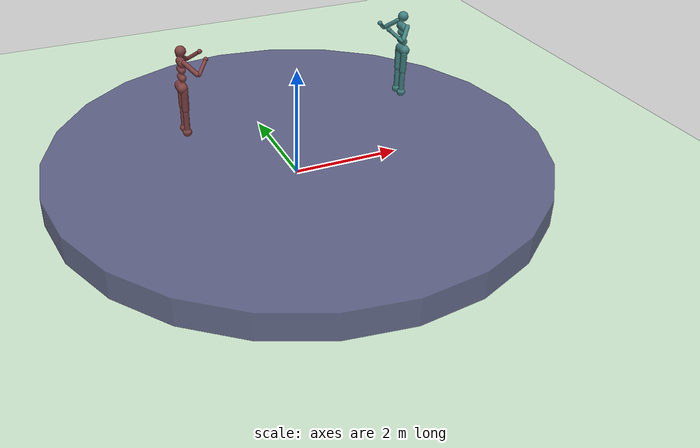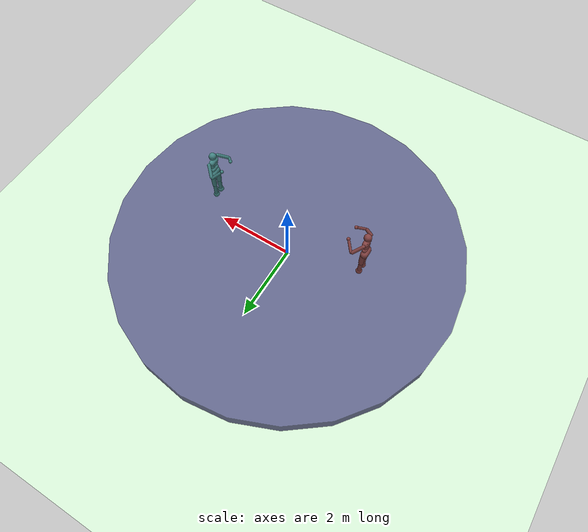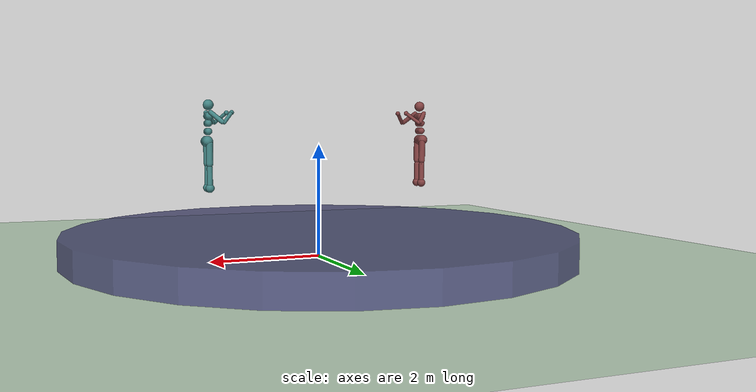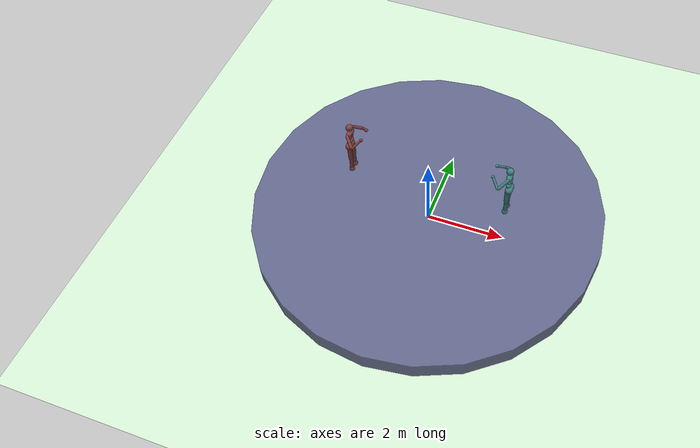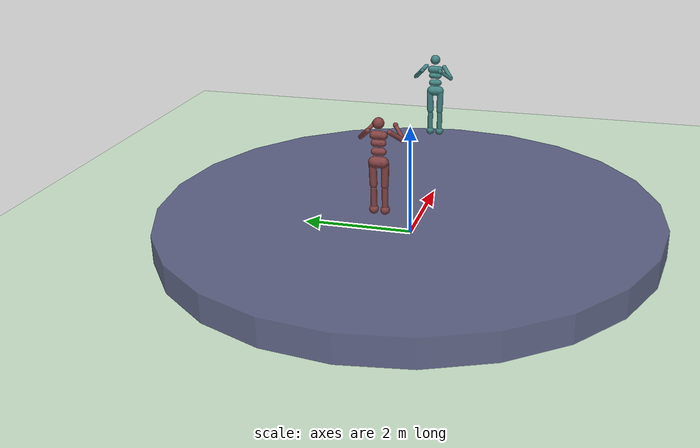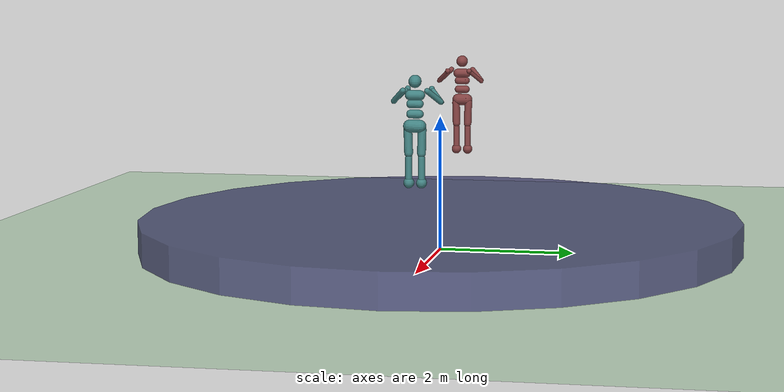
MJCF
<mujoco model="mutiagent_world">
  <compiler angle="degree" coordinate="local" inertiafromgeom="true" />
  <option integrator="RK4" iterations="1000" solver="PGS" timestep="0.003" />
  <visual>
    <quality numarrows="10"/>
    <scale forcewidth="1"/>
    <map force="100"/>
  </visual>
  <size nconmax="1000"/>
  <default>
    <joint armature="1" damping="1" limited="true" />
  <default class="agent0"><joint armature="1" damping="1" limited="true" />
    <geom conaffinity="1" condim="1" contype="1" margin="0.001" material="geom" rgba="0.5 0.25 0.25 1" />
    <motor ctrllimited="true" ctrlrange="-.4 .4" />
</default><default class="agent1"><joint armature="1" damping="1" limited="true" />
    <geom conaffinity="1" condim="1" contype="1" margin="0.001" material="geom" rgba="0.25 0.5 0.5 1" />
    <motor ctrllimited="true" ctrlrange="-.4 .4" />
</default></default>
  <asset>
    <texture builtin="gradient" height="100" rgb1="1 1 1" rgb2="0 0 0" type="skybox" width="100" />
    <texture builtin="flat" height="1278" mark="cross" markrgb="1 1 1" name="texgeom" random="0.01" rgb1="0.8 0.6 0.4" rgb2="0.8 0.6 0.4" type="cube" width="127" />
    <texture builtin="checker" height="100" name="texplane" rgb1="0 0.5 0.5" rgb2="0 0.6 0.6" type="2d" width="100" />
    <material name="MatPlane" reflectance="0.5" shininess="1" specular="1" texrepeat="60 60" texture="texplane" />
    <material name="geom" texture="texgeom" texuniform="true" />
  </asset>
  <worldbody>
    <light cutoff="100" diffuse="1 1 1" dir="-0 0 -1.3" directional="true" exponent="1" pos="0 0 1.3" specular=".1 .1 .1" />
    <geom conaffinity="1" condim="3" contype="1" friction="1 .1 .1" material="MatPlane" name="floor" pos="0 0 0" rgba="0.8 0.9 0.8 1" size="20 20 0.125" type="plane" />
    <geom fromto="4 -5 0  4 +5 0" name="rightgoal" rgba="0.6 0.0 0.0 0" size=".03" type="cylinder" />
    <geom fromto="-4 -5 0  -4 +5 0" name="leftgoal" rgba="0.6 0.0 0.0 0" size=".03" type="cylinder" />
    <geom conaffinity="0xffffffff" condim="3" contype="1" friction="1 .1 .1" name="arena" size="4.5 .25" type="cylinder" pos="0 0 0.25" rgba="0.3 0.3 0.5 0.8"/>
  <body euler="0 0 0" name="agent0/torso" pos="-2 0 2.5">
    <geom contype="0" conaffinity="0" mass="0" fromto="0.0 0 0 0.001 0 0" name="agent0/wind" rgba="0.3 0.3 0.8 0.9" size="0.05" type="capsule" />
    <joint armature="0" damping="0" limited="false" name="agent0/root" pos="0 0 0" stiffness="0" type="free" />
    <geom class="agent0" fromto="0 -.07 0 0 .07 0" name="agent0/torso1" size="0.07" type="capsule" />
    <geom class="agent0" name="agent0/head" pos="0 0 .19" size=".09" type="sphere" user="258" />
    <geom class="agent0" fromto="-.01 -.06 -.12 -.01 .06 -.12" name="agent0/uwaist" size="0.06" type="capsule" />
    <body name="agent0/lwaist" pos="-.01 0 -0.260" quat="1.000 0 -0.002 0">
        <geom class="agent0" fromto="0 -.06 0 0 .06 0" name="agent0/lwaist" size="0.06" type="capsule" />
        <joint armature="0.02" axis="0 0 1" damping="5" name="agent0/abdomen_z" pos="0 0 0.065" range="-45 45" stiffness="20" type="hinge" />
        <joint armature="0.02" axis="0 1 0" damping="5" name="agent0/abdomen_y" pos="0 0 0.065" range="-75 30" stiffness="10" type="hinge" />
        <body name="agent0/pelvis" pos="0 0 -0.165" quat="1.000 0 -0.002 0">
            <joint armature="0.02" axis="1 0 0" damping="5" name="agent0/abdomen_x" pos="0 0 0.1" range="-35 35" stiffness="10" type="hinge" />
            <geom class="agent0" fromto="-.02 -.07 0 -.02 .07 0" name="agent0/butt" size="0.09" type="capsule" />
            <body name="agent0/right_thigh" pos="0 -0.1 -0.04">
                <joint armature="0.01" axis="1 0 0" damping="5" name="agent0/right_hip_x" pos="0 0 0" range="-25 5" stiffness="10" type="hinge" />
                <joint armature="0.01" axis="0 0 1" damping="5" name="agent0/right_hip_z" pos="0 0 0" range="-60 35" stiffness="10" type="hinge" />
                <joint armature="0.0080" axis="0 1 0" damping="5" name="agent0/right_hip_y" pos="0 0 0" range="-110 20" stiffness="20" type="hinge" />
                <geom class="agent0" fromto="0 0 0 0 0.01 -.34" name="agent0/right_thigh1" size="0.06" type="capsule" />
                <body name="agent0/right_shin" pos="0 0.01 -0.403">
                    <joint armature="0.0060" axis="0 -1 0" name="agent0/right_knee" pos="0 0 .02" range="-160 -2" type="hinge" />
                    <geom class="agent0" fromto="0 0 0 0 0 -.3" name="agent0/right_shin1" size="0.049" type="capsule" />
                    <body name="agent0/right_foot" pos="0 0 -0.45">
                        <geom class="agent0" name="agent0/right_foot" pos="0 0 0.1" size="0.075" type="sphere" user="0" />
                    </body>
                </body>
            </body>
            <body name="agent0/left_thigh" pos="0 0.1 -0.04">
                <joint armature="0.01" axis="-1 0 0" damping="5" name="agent0/left_hip_x" pos="0 0 0" range="-25 5" stiffness="10" type="hinge" />
                <joint armature="0.01" axis="0 0 -1" damping="5" name="agent0/left_hip_z" pos="0 0 0" range="-60 35" stiffness="10" type="hinge" />
                <joint armature="0.01" axis="0 1 0" damping="5" name="agent0/left_hip_y" pos="0 0 0" range="-120 20" stiffness="20" type="hinge" />
                <geom class="agent0" fromto="0 0 0 0 -0.01 -.34" name="agent0/left_thigh1" size="0.06" type="capsule" />
                <body name="agent0/left_shin" pos="0 -0.01 -0.403">
                    <joint armature="0.0060" axis="0 -1 0" name="agent0/left_knee" pos="0 0 .02" range="-160 -2" stiffness="1" type="hinge" />
                    <geom class="agent0" fromto="0 0 0 0 0 -.3" name="agent0/left_shin1" size="0.049" type="capsule" />
                    <body name="agent0/left_foot" pos="0 0 -0.45">
                        <geom class="agent0" name="agent0/left_foot" pos="0 0 0.1" size="0.075" type="sphere" user="0" />
                    </body>
                </body>
            </body>
        </body>
    </body>
    <body name="agent0/right_upper_arm" pos="0 -0.17 0.06">
        <joint armature="0.0068" axis="2 1 1" name="agent0/right_shoulder1" pos="0 0 0" range="-85 60" stiffness="1" type="hinge" />
        <joint armature="0.0051" axis="0 -1 1" name="agent0/right_shoulder2" pos="0 0 0" range="-85 60" stiffness="1" type="hinge" />
        <geom class="agent0" fromto="0 0 0 .16 -.16 -.16" name="agent0/right_uarm1" size="0.04 0.16" type="capsule" />
        <body name="agent0/right_lower_arm" pos=".18 -.18 -.18">
            <joint armature="0.0028" axis="0 -1 1" name="agent0/right_elbow" pos="0 0 0" range="-90 50" stiffness="0" type="hinge" />
            <geom class="agent0" fromto="0.01 0.01 0.01 .17 .17 .17" name="agent0/right_larm" size="0.031" type="capsule" />
            <geom class="agent0" name="agent0/right_hand" pos=".18 .18 .18" size="0.04" type="sphere" />
            <camera name="agent0/anon6823790222" pos="0 0 0" />
        </body>
    </body>
    <body name="agent0/left_upper_arm" pos="0 0.17 0.06">
        <joint armature="0.0068" axis="2 -1 1" name="agent0/left_shoulder1" pos="0 0 0" range="-60 85" stiffness="1" type="hinge" />
        <joint armature="0.0051" axis="0 1 1" name="agent0/left_shoulder2" pos="0 0 0" range="-60 85" stiffness="1" type="hinge" />
        <geom class="agent0" fromto="0 0 0 .16 .16 -.16" name="agent0/left_uarm1" size="0.04 0.16" type="capsule" />
        <body name="agent0/left_lower_arm" pos=".18 .18 -.18">
            <joint armature="0.0028" axis="0 -1 -1" name="agent0/left_elbow" pos="0 0 0" range="-90 50" stiffness="0" type="hinge" />
            <geom class="agent0" fromto="0.01 -0.01 0.01 .17 -.17 .17" name="agent0/left_larm" size="0.031" type="capsule" />
            <geom class="agent0" name="agent0/left_hand" pos=".18 -.18 .18" size="0.04" type="sphere" />
        </body>
    </body>
</body>

<body euler="0 0 180" name="agent1/torso" pos="2 0 2.5">
    <geom contype="0" conaffinity="0" mass="0" fromto="0.0 0 0 0.001 0 0" name="agent1/wind" rgba="0.3 0.3 0.8 0.9" size="0.05" type="capsule" />
    <joint armature="0" damping="0" limited="false" name="agent1/root" pos="0 0 0" stiffness="0" type="free" />
    <geom class="agent1" fromto="0 -.07 0 0 .07 0" name="agent1/torso1" size="0.07" type="capsule" />
    <geom class="agent1" name="agent1/head" pos="0 0 .19" size=".09" type="sphere" user="258" />
    <geom class="agent1" fromto="-.01 -.06 -.12 -.01 .06 -.12" name="agent1/uwaist" size="0.06" type="capsule" />
    <body name="agent1/lwaist" pos="-.01 0 -0.260" quat="1.000 0 -0.002 0">
        <geom class="agent1" fromto="0 -.06 0 0 .06 0" name="agent1/lwaist" size="0.06" type="capsule" />
        <joint armature="0.02" axis="0 0 1" damping="5" name="agent1/abdomen_z" pos="0 0 0.065" range="-45 45" stiffness="20" type="hinge" />
        <joint armature="0.02" axis="0 1 0" damping="5" name="agent1/abdomen_y" pos="0 0 0.065" range="-75 30" stiffness="10" type="hinge" />
        <body name="agent1/pelvis" pos="0 0 -0.165" quat="1.000 0 -0.002 0">
            <joint armature="0.02" axis="1 0 0" damping="5" name="agent1/abdomen_x" pos="0 0 0.1" range="-35 35" stiffness="10" type="hinge" />
            <geom class="agent1" fromto="-.02 -.07 0 -.02 .07 0" name="agent1/butt" size="0.09" type="capsule" />
            <body name="agent1/right_thigh" pos="0 -0.1 -0.04">
                <joint armature="0.01" axis="1 0 0" damping="5" name="agent1/right_hip_x" pos="0 0 0" range="-25 5" stiffness="10" type="hinge" />
                <joint armature="0.01" axis="0 0 1" damping="5" name="agent1/right_hip_z" pos="0 0 0" range="-60 35" stiffness="10" type="hinge" />
                <joint armature="0.0080" axis="0 1 0" damping="5" name="agent1/right_hip_y" pos="0 0 0" range="-110 20" stiffness="20" type="hinge" />
                <geom class="agent1" fromto="0 0 0 0 0.01 -.34" name="agent1/right_thigh1" size="0.06" type="capsule" />
                <body name="agent1/right_shin" pos="0 0.01 -0.403">
                    <joint armature="0.0060" axis="0 -1 0" name="agent1/right_knee" pos="0 0 .02" range="-160 -2" type="hinge" />
                    <geom class="agent1" fromto="0 0 0 0 0 -.3" name="agent1/right_shin1" size="0.049" type="capsule" />
                    <body name="agent1/right_foot" pos="0 0 -0.45">
                        <geom class="agent1" name="agent1/right_foot" pos="0 0 0.1" size="0.075" type="sphere" user="0" />
                    </body>
                </body>
            </body>
            <body name="agent1/left_thigh" pos="0 0.1 -0.04">
                <joint armature="0.01" axis="-1 0 0" damping="5" name="agent1/left_hip_x" pos="0 0 0" range="-25 5" stiffness="10" type="hinge" />
                <joint armature="0.01" axis="0 0 -1" damping="5" name="agent1/left_hip_z" pos="0 0 0" range="-60 35" stiffness="10" type="hinge" />
                <joint armature="0.01" axis="0 1 0" damping="5" name="agent1/left_hip_y" pos="0 0 0" range="-120 20" stiffness="20" type="hinge" />
                <geom class="agent1" fromto="0 0 0 0 -0.01 -.34" name="agent1/left_thigh1" size="0.06" type="capsule" />
                <body name="agent1/left_shin" pos="0 -0.01 -0.403">
                    <joint armature="0.0060" axis="0 -1 0" name="agent1/left_knee" pos="0 0 .02" range="-160 -2" stiffness="1" type="hinge" />
                    <geom class="agent1" fromto="0 0 0 0 0 -.3" name="agent1/left_shin1" size="0.049" type="capsule" />
                    <body name="agent1/left_foot" pos="0 0 -0.45">
                        <geom class="agent1" name="agent1/left_foot" pos="0 0 0.1" size="0.075" type="sphere" user="0" />
                    </body>
                </body>
            </body>
        </body>
    </body>
    <body name="agent1/right_upper_arm" pos="0 -0.17 0.06">
        <joint armature="0.0068" axis="2 1 1" name="agent1/right_shoulder1" pos="0 0 0" range="-85 60" stiffness="1" type="hinge" />
        <joint armature="0.0051" axis="0 -1 1" name="agent1/right_shoulder2" pos="0 0 0" range="-85 60" stiffness="1" type="hinge" />
        <geom class="agent1" fromto="0 0 0 .16 -.16 -.16" name="agent1/right_uarm1" size="0.04 0.16" type="capsule" />
        <body name="agent1/right_lower_arm" pos=".18 -.18 -.18">
            <joint armature="0.0028" axis="0 -1 1" name="agent1/right_elbow" pos="0 0 0" range="-90 50" stiffness="0" type="hinge" />
            <geom class="agent1" fromto="0.01 0.01 0.01 .17 .17 .17" name="agent1/right_larm" size="0.031" type="capsule" />
            <geom class="agent1" name="agent1/right_hand" pos=".18 .18 .18" size="0.04" type="sphere" />
            <camera name="agent1/anon3219259091" pos="0 0 0" />
        </body>
    </body>
    <body name="agent1/left_upper_arm" pos="0 0.17 0.06">
        <joint armature="0.0068" axis="2 -1 1" name="agent1/left_shoulder1" pos="0 0 0" range="-60 85" stiffness="1" type="hinge" />
        <joint armature="0.0051" axis="0 1 1" name="agent1/left_shoulder2" pos="0 0 0" range="-60 85" stiffness="1" type="hinge" />
        <geom class="agent1" fromto="0 0 0 .16 .16 -.16" name="agent1/left_uarm1" size="0.04 0.16" type="capsule" />
        <body name="agent1/left_lower_arm" pos=".18 .18 -.18">
            <joint armature="0.0028" axis="0 -1 -1" name="agent1/left_elbow" pos="0 0 0" range="-90 50" stiffness="0" type="hinge" />
            <geom class="agent1" fromto="0.01 -0.01 0.01 .17 -.17 .17" name="agent1/left_larm" size="0.031" type="capsule" />
            <geom class="agent1" name="agent1/left_hand" pos=".18 -.18 .18" size="0.04" type="sphere" />
        </body>
    </body>
</body>

</worldbody>
<actuator>
    <motor class="agent0" gear="100" joint="agent0/abdomen_y" name="agent0/abdomen_y" />
    <motor class="agent0" gear="100" joint="agent0/abdomen_z" name="agent0/abdomen_z" />
    <motor class="agent0" gear="100" joint="agent0/abdomen_x" name="agent0/abdomen_x" />
    <motor class="agent0" gear="100" joint="agent0/right_hip_x" name="agent0/right_hip_x" />
    <motor class="agent0" gear="100" joint="agent0/right_hip_z" name="agent0/right_hip_z" />
    <motor class="agent0" gear="300" joint="agent0/right_hip_y" name="agent0/right_hip_y" />
    <motor class="agent0" gear="200" joint="agent0/right_knee" name="agent0/right_knee" />
    <motor class="agent0" gear="100" joint="agent0/left_hip_x" name="agent0/left_hip_x" />
    <motor class="agent0" gear="100" joint="agent0/left_hip_z" name="agent0/left_hip_z" />
    <motor class="agent0" gear="300" joint="agent0/left_hip_y" name="agent0/left_hip_y" />
    <motor class="agent0" gear="200" joint="agent0/left_knee" name="agent0/left_knee" />
    <motor class="agent0" gear="25" joint="agent0/right_shoulder1" name="agent0/right_shoulder1" />
    <motor class="agent0" gear="25" joint="agent0/right_shoulder2" name="agent0/right_shoulder2" />
    <motor class="agent0" gear="25" joint="agent0/right_elbow" name="agent0/right_elbow" />
    <motor class="agent0" gear="25" joint="agent0/left_shoulder1" name="agent0/left_shoulder1" />
    <motor class="agent0" gear="25" joint="agent0/left_shoulder2" name="agent0/left_shoulder2" />
    <motor class="agent0" gear="25" joint="agent0/left_elbow" name="agent0/left_elbow" />
<motor class="agent1" gear="100" joint="agent1/abdomen_y" name="agent1/abdomen_y" />
    <motor class="agent1" gear="100" joint="agent1/abdomen_z" name="agent1/abdomen_z" />
    <motor class="agent1" gear="100" joint="agent1/abdomen_x" name="agent1/abdomen_x" />
    <motor class="agent1" gear="100" joint="agent1/right_hip_x" name="agent1/right_hip_x" />
    <motor class="agent1" gear="100" joint="agent1/right_hip_z" name="agent1/right_hip_z" />
    <motor class="agent1" gear="300" joint="agent1/right_hip_y" name="agent1/right_hip_y" />
    <motor class="agent1" gear="200" joint="agent1/right_knee" name="agent1/right_knee" />
    <motor class="agent1" gear="100" joint="agent1/left_hip_x" name="agent1/left_hip_x" />
    <motor class="agent1" gear="100" joint="agent1/left_hip_z" name="agent1/left_hip_z" />
    <motor class="agent1" gear="300" joint="agent1/left_hip_y" name="agent1/left_hip_y" />
    <motor class="agent1" gear="200" joint="agent1/left_knee" name="agent1/left_knee" />
    <motor class="agent1" gear="25" joint="agent1/right_shoulder1" name="agent1/right_shoulder1" />
    <motor class="agent1" gear="25" joint="agent1/right_shoulder2" name="agent1/right_shoulder2" />
    <motor class="agent1" gear="25" joint="agent1/right_elbow" name="agent1/right_elbow" />
    <motor class="agent1" gear="25" joint="agent1/left_shoulder1" name="agent1/left_shoulder1" />
    <motor class="agent1" gear="25" joint="agent1/left_shoulder2" name="agent1/left_shoulder2" />
    <motor class="agent1" gear="25" joint="agent1/left_elbow" name="agent1/left_elbow" />
</actuator>

<tendon>
    <fixed name="agent0/left_hipknee">
        <joint coef="-1" joint="agent0/left_hip_y" />
        <joint coef="1" joint="agent0/left_knee" />
    </fixed>
    <fixed name="agent0/right_hipknee">
        <joint coef="-1" joint="agent0/right_hip_y" />
        <joint coef="1" joint="agent0/right_knee" />
    </fixed>
<fixed name="agent1/left_hipknee">
        <joint coef="-1" joint="agent1/left_hip_y" />
        <joint coef="1" joint="agent1/left_knee" />
    </fixed>
    <fixed name="agent1/right_hipknee">
        <joint coef="-1" joint="agent1/right_hip_y" />
        <joint coef="1" joint="agent1/right_knee" />
    </fixed>
</tendon>

</mujoco>
